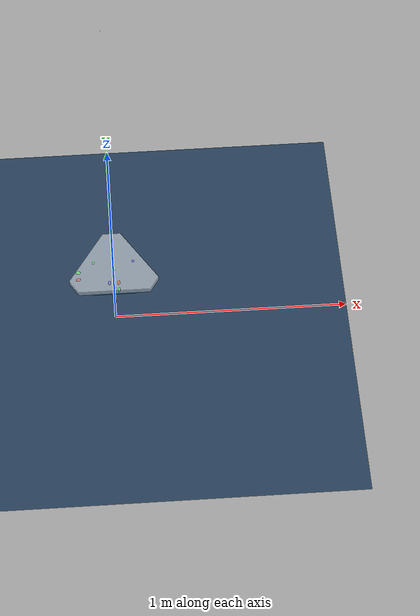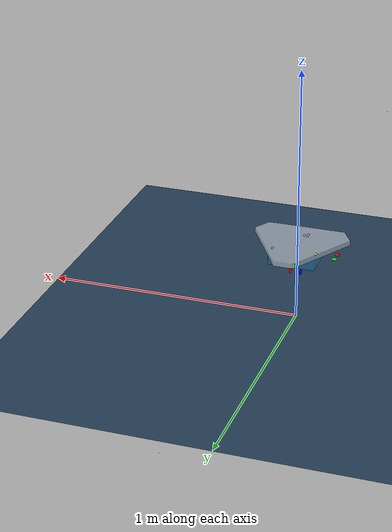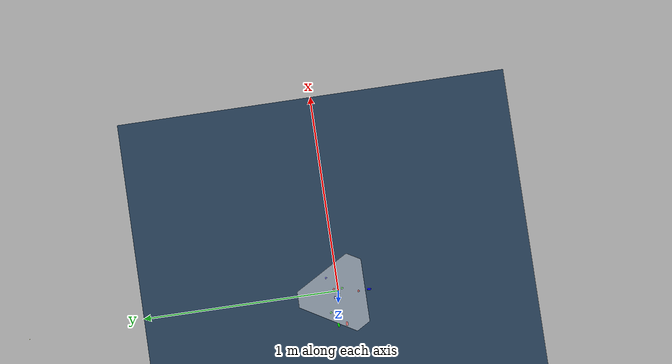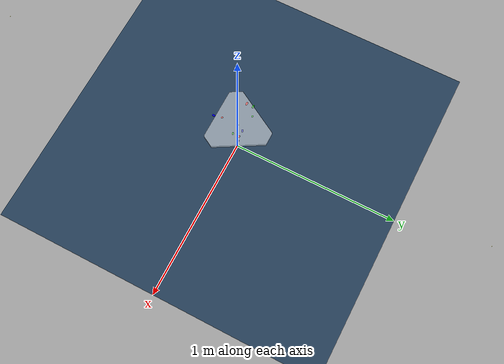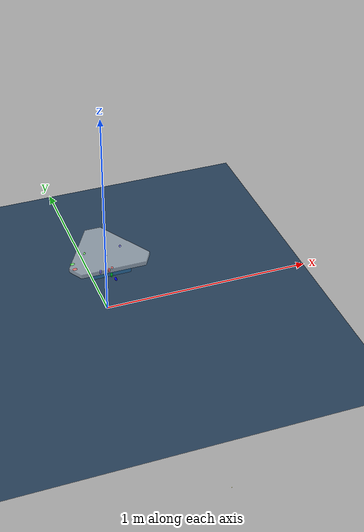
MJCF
<mujoco model="wafer stage">
  <compiler angle="radian"/>

  <option integrator="RK4"/>

  <default>
    <geom type="mesh"/>
  </default>

  <asset>
    <texture type="2d" name="grid" builtin="checker" rgb1="0.1 0.2 0.3" rgb2="0.2 0.3 0.4" width="300" height="300"/>
    <material name="grid" texture="grid" texrepeat="8 8" reflectance="0.2"/>
    <mesh name="stage" vertex="-0.0375 0.194856 0 0.0375 0.194856 0 -0.1875 -0.0649519 0 0.1875 -0.0649519 0 -0.15 -0.129904 0 0.15 -0.129904 0 -0.0375 0.194856 0.02 0.0375 0.194856 0.02 -0.1875 -0.0649519 0.02 0.1875 -0.0649519 0.02 -0.15 -0.129904 0.02 0.15 -0.129904 0.02"/>
  </asset>

  <worldbody>
    <geom size="1 1 0.1" type="plane" material="grid"/>
    <camera name="closeup" pos="0 -0.1 0.07" quat="0.850651 0.525731 0 0"/>
    <light pos="0 0 2" dir="0 0 -1"/>
    <body name="stage" pos="0 0 0.3">
      <joint type="free" limited="false" actuatorfrclimited="false"/>
      <geom mass="7" rgba="1 1 1 0.5" mesh="stage"/>
      <geom name="mirror_body" size="0.09 0.09 0.025" pos="0 0 -0.025" type="box" mass="0" rgba="0 0.6 1 0.3"/>
      <geom name="act_restrict_z1" size="0.001" pos="0 0 -0.25" type="sphere" friction="0 0 0" mass="0" rgba="1 1 0 1"/>
      <geom name="act_restrict_z2" size="0.001" pos="0 0 0.25" type="sphere" friction="0 0 0" mass="0" rgba="1 1 0 1"/>
      <geom name="act_restrict_y1" size="0.001" pos="0 1.5 0" type="sphere" friction="0 0 0" mass="0" rgba="1 1 0 1"/>
      <geom name="act_restrict_y2" size="0.001" pos="0 -1.5 0" type="sphere" friction="0 0 0" mass="0" rgba="1 1 0 1"/>
      <site name="act_o" pos="0 -0.0974279 0" rgba="1 0 0 1"/>
      <site name="act_p" pos="-0.084375 0.0487139 0" rgba="0 1 0 1"/>
      <site name="act_q" pos="0.084375 0.0487139 0" rgba="0 0 1 1"/>
      <site name="center" pos="0 0 0" rgba="0 0 0 1"/>
    </body>
    <body name="restriction" pos="0 0 0.3">
      <geom name="restriction_x1_max" size="0.016 0.041 0.005" pos="0.036 0 -0.25" quat="0.707107 0 0.707107 0" type="box" friction="0 0 0" mass="1" rgba="1 0 0 0"/>
      <geom name="restriction_x1_min" size="0.016 0.041 0.005" pos="-0.036 0 -0.25" quat="0.707107 0 0.707107 0" type="box" friction="0 0 0" mass="1" rgba="0 1 1 0"/>
      <geom name="restriction_y1_max" size="0.041 0.016 0.005" pos="0 0.036 -0.25" quat="0.707107 0.707107 0 0" type="box" friction="0 0 0" mass="1" rgba="0 1 0 0"/>
      <geom name="restriction_y1_min" size="0.041 0.016 0.005" pos="0 -0.036 -0.25" quat="0.707107 0.707107 0 0" type="box" friction="0 0 0" mass="1" rgba="1 0 1 0"/>
      <geom name="restriction_z1_max" size="0.041 0.041 0.005" pos="0 0 -0.239" type="box" friction="0 0 0" mass="1" rgba="0 0 1 0"/>
      <geom name="restriction_z1_min" size="0.041 0.041 0.005" pos="0 0 -0.261" type="box" friction="0 0 0" mass="1" rgba="1 1 0 0"/>
      <geom name="restriction_x2_max" size="0.016 0.041 0.005" pos="0.036 0 0.25" quat="0.707107 0 0.707107 0" type="box" friction="0 0 0" mass="1" rgba="1 0 0 0"/>
      <geom name="restriction_x2_min" size="0.016 0.041 0.005" pos="-0.036 0 0.25" quat="0.707107 0 0.707107 0" type="box" friction="0 0 0" mass="1" rgba="0 1 1 0"/>
      <geom name="restriction_y2_max" size="0.041 0.016 0.005" pos="0 0.036 0.25" quat="0.707107 0.707107 0 0" type="box" friction="0 0 0" mass="1" rgba="0 1 0 0"/>
      <geom name="restriction_y2_min" size="0.041 0.016 0.005" pos="0 -0.036 0.25" quat="0.707107 0.707107 0 0" type="box" friction="0 0 0" mass="1" rgba="1 0 1 0"/>
      <geom name="restriction_z2_max" size="0.041 0.041 0.005" pos="0 0 0.261" type="box" friction="0 0 0" mass="1" rgba="0 0 1 0"/>
      <geom name="restriction_z2_min" size="0.041 0.041 0.005" pos="0 0 0.239" type="box" friction="0 0 0" mass="1" rgba="1 1 0 0"/>
      <geom name="restriction_x3_max" size="0.24 0.205 0.05" pos="0.161236 1.38611 0" quat="0.707107 0 0.707107 0" type="box" friction="0 0 0" mass="1" rgba="1 0 0 0"/>
      <geom name="restriction_x3_min" size="0.24 0.205 0.05" pos="-0.161236 1.38611 0" quat="0.707107 0 0.707107 0" type="box" friction="0 0 0" mass="1" rgba="0 1 1 0"/>
      <geom name="restriction_x4_max" size="0.24 0.205 0.05" pos="0.161236 -1.38611 0" quat="0.707107 0 0.707107 0" type="box" friction="0 0 0" mass="1" rgba="1 0 0 0"/>
      <geom name="restriction_x4_min" size="0.24 0.205 0.05" pos="-0.161236 -1.38611 0" quat="0.707107 0 0.707107 0" type="box" friction="0 0 0" mass="1" rgba="0 1 1 0"/>
    </body>
    <body name="sensor" pos="0 0 0.3">
      <site name="sensor_z1" pos="0.02 0.02 -0.1" type="capsule" rgba="1 0 0 1"/>
      <site name="sensor_z2" pos="0.02 -0.02 -0.1" type="capsule" rgba="0 1 0 1"/>
      <site name="sensor_z3" pos="-0.02 0.02 -0.1" type="capsule" rgba="0 0 1 1"/>
      <site name="sensor_x1" pos="-0.15 -0.02 -0.025" quat="0.707107 0 0.707107 0" type="capsule" rgba="1 0 0 1"/>
      <site name="sensor_x2" pos="-0.15 0.02 -0.025" quat="0.707107 0 0.707107 0" type="capsule" rgba="0 1 0 1"/>
      <site name="sensor_y" pos="0 -0.15 -0.025" quat="0.707107 -0.707107 0 0" type="capsule" rgba="0 0 1 1"/>
    </body>
  </worldbody>

  <actuator>
    <general name="v_1" site="act_o" forcerange="0 1" gear="0 0 1 0 0 0"/>
    <general name="v_2" site="act_p" forcerange="0 1" gear="0 0 1 0 0 0"/>
    <general name="v_3" site="act_q" forcerange="0 1" gear="0 0 1 0 0 0"/>
    <general name="h_1" site="act_o" forcerange="-1 1"/>
    <general name="h_2" site="act_p" forcerange="-1 1" gear="-0.5 -0.866 0 0 0 0"/>
    <general name="h_3" site="act_q" forcerange="-1 1" gear="-0.5 0.866 0 0 0 0"/>
    <general name="total" site="center" forcerange="0 1" gear="0 0 68.6 0 0 0"/>
  </actuator>

  <sensor>
    <rangefinder site="sensor_z1" name="sensor_z1"/>
    <rangefinder site="sensor_z2" name="sensor_z2"/>
    <rangefinder site="sensor_z3" name="sensor_z3"/>
    <rangefinder site="sensor_x1" name="sensor_x1"/>
    <rangefinder site="sensor_x2" name="sensor_x2"/>
    <rangefinder site="sensor_y" name="sensor_y"/>
    <gyro site="center" name="body_gyro"/>
    <accelerometer site="center" name="body_linacc"/>
  </sensor>
</mujoco>
